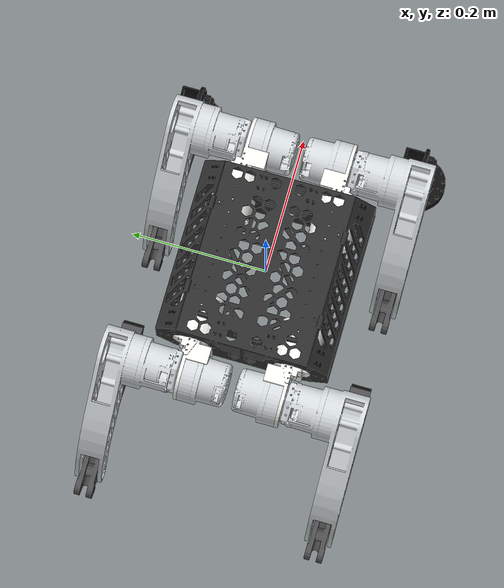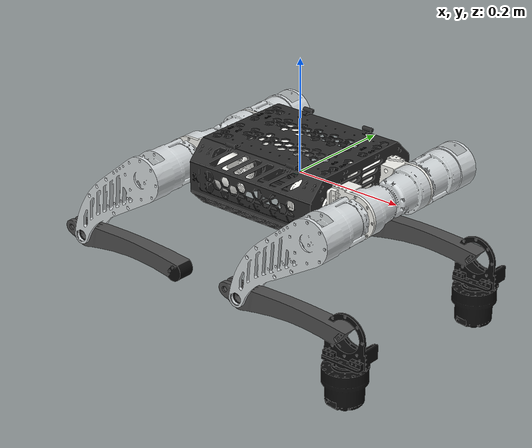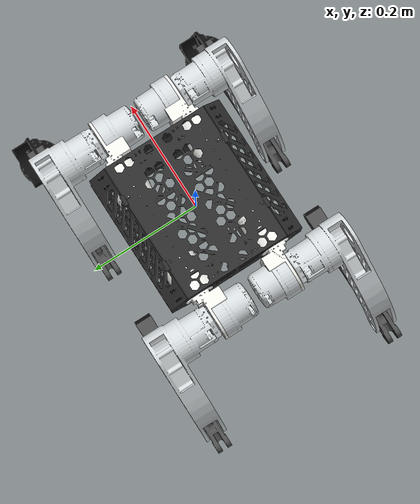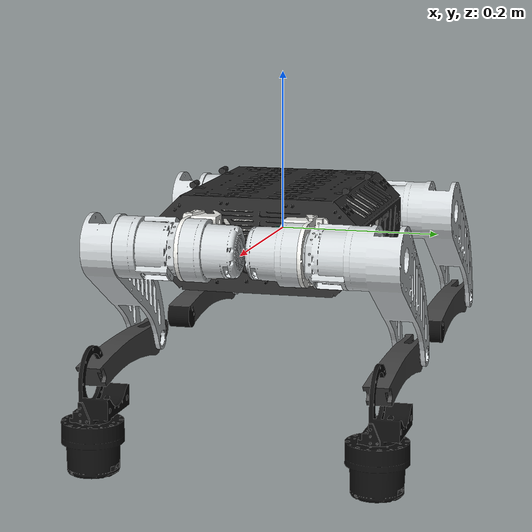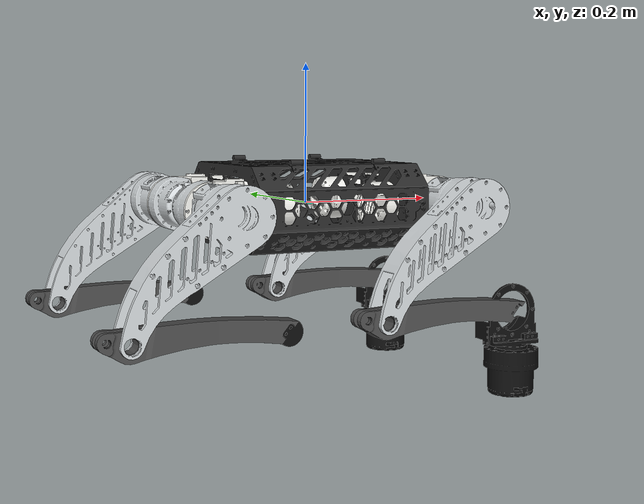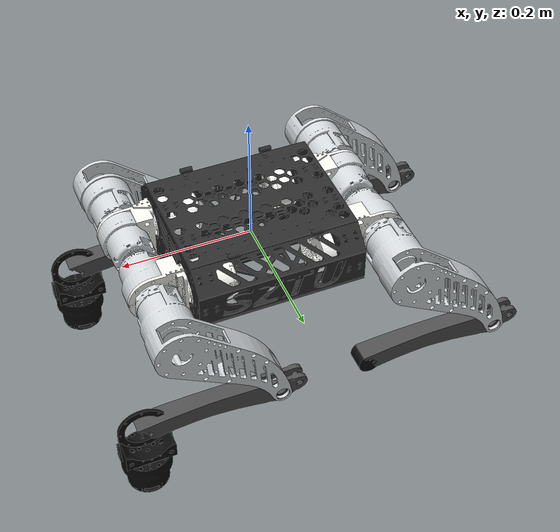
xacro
<?xml version="1.0"?>
<robot xmlns:xacro="http://www.ros.org/wiki/xacro" name="robot">

<!--模型部分-->
    <!--虚拟关节-->
        <link name="dummy_link">
            <!-- 虚拟链接不需要惯性参数 -->
        </link>
        <joint name="dummy_to_base" type="fixed">
            <parent link="dummy_link"/>
            <child link="base_link"/>
            <origin xyz="0 0 0" rpy="0 0 0"/>
        </joint>
    <!--模型-->
        <xacro:include filename="$(find robot_description)/robot/urdf/Combination.xacro"/>
<!--gazebo仿真部分-->
    <xacro:include filename="$(find robot_description)/robot/urdf/sensor_gazebo.xacro"/>
    <!--imu-->
        <xacro:imu_gazebo imu_name="imu_link" connected_to="base_link"/>
    <!--motor-->
        <xacro:motor_gazebo />
    <!--作弊里程计-->
        <gazebo>
            <plugin name="ground_truth_odometry" filename="libgazebo_ros_p3d.so">
                <alwaysOn>true</alwaysOn>
                <updateRate>500.0</updateRate>
                <bodyName>base_link</bodyName>
                <topicName>odom</topicName>
                <gaussianNoise>0.01</gaussianNoise>
                <frameName>world</frameName>
                    <!-- initialize odometry for fake localization-->
                <xyzOffsets>0 0 0</xyzOffsets>
                <rpyOffsets>0 0 0</rpyOffsets>
            </plugin>
        </gazebo>

        <gazebo reference="base_link">
            <mu1>0.2</mu1>
            <mu2>0.2</mu2>
            <kp  value="1000000.0"/>
            <kd  value="1.0"/>
        </gazebo>

        <!--  leg 1-->
        <gazebo reference="leg1_link1">
            <mu1>0.2</mu1>
            <mu2>0.2</mu2>
            <material>Gazebo/DarkGrey</material>
        </gazebo>
        <gazebo reference="leg1_link2">
            <mu1>0.2</mu1>
            <mu2>0.2</mu2>
            <self_collide>1</self_collide>
            <material>Gazebo/DarkGrey</material>
            <kp  value="1000000.0"/>
            <kd  value="1.0"/>
        </gazebo>
        <gazebo reference="leg1_link3">
            <mu1>0.2</mu1>
            <mu2>0.2</mu2>
            <self_collide>1</self_collide>
        </gazebo>
        <gazebo reference="leg1_link4">
            <mu1>0.6</mu1>
            <mu2>0.6</mu2>
            <self_collide>1</self_collide>
            <material>Gazebo/DarkGrey</material>
            <kp  value="1000000.0"/>
            <kd  value="1.0"/>
        </gazebo>

        <!--  leg 2-->
        <gazebo reference="leg2_link1">
            <mu1>0.2</mu1>
            <mu2>0.2</mu2>
            <material>Gazebo/DarkGrey</material>
        </gazebo>
        <gazebo reference="leg2_link2">
            <mu1>0.2</mu1>
            <mu2>0.2</mu2>
            <self_collide>1</self_collide>
            <material>Gazebo/DarkGrey</material>
            <kp  value="1000000.0"/>
            <kd  value="1.0"/>
        </gazebo>
        <gazebo reference="leg2_link3">
            <mu1>0.2</mu1>
            <mu2>0.2</mu2>
            <self_collide>1</self_collide>
        </gazebo>
        <gazebo reference="leg2_link4">
            <mu1>0.6</mu1>
            <mu2>0.6</mu2>
            <self_collide>1</self_collide>
            <material>Gazebo/DarkGrey</material>
            <kp  value="1000000.0"/>
            <kd  value="1.0"/>
        </gazebo>

        <!--  leg 3-->
        <gazebo reference="leg3_link1">
            <mu1>0.2</mu1>
            <mu2>0.2</mu2>
            <material>Gazebo/DarkGrey</material>
        </gazebo>
        <gazebo reference="leg3_link2">
            <mu1>0.2</mu1>
            <mu2>0.2</mu2>
            <self_collide>1</self_collide>
            <material>Gazebo/DarkGrey</material>
            <kp  value="1000000.0"/>
            <kd  value="1.0"/>
        </gazebo>
        <gazebo reference="leg3_link3">
            <mu1>0.2</mu1>
            <mu2>0.2</mu2>
            <self_collide>1</self_collide>
        </gazebo>
        <gazebo reference="leg3_link4">
            <mu1>0.6</mu1>
            <mu2>0.6</mu2>
            <self_collide>1</self_collide>
            <material>Gazebo/DarkGrey</material>
            <kp  value="1000000.0"/>
            <kd  value="1.0"/>
        </gazebo>

        <!--  leg 4-->
        <gazebo reference="leg4_link1">
            <mu1>0.2</mu1>
            <mu2>0.2</mu2>
            <material>Gazebo/DarkGrey</material>
        </gazebo>
        <gazebo reference="leg4_link2">
            <mu1>0.2</mu1>
            <mu2>0.2</mu2>
            <self_collide>1</self_collide>
            <material>Gazebo/DarkGrey</material>
            <kp  value="1000000.0"/>
            <kd  value="1.0"/>
        </gazebo>
        <gazebo reference="leg4_link3">
            <mu1>0.2</mu1>
            <mu2>0.2</mu2>
            <self_collide>1</self_collide>
        </gazebo>
        <gazebo reference="leg4_link4">
            <mu1>0.6</mu1>
            <mu2>0.6</mu2>
            <self_collide>1</self_collide>
            <material>Gazebo/DarkGrey</material>
            <kp  value="1000000.0"/>
            <kd  value="1.0"/>
        </gazebo>

</robot>

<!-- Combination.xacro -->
<robot xmlns:xacro="http://www.ros.org/wiki/xacro" name="robot">
<!--机器人描述-->
    <!--通用描述参数-->
        <xacro:include filename="$(find robot_description)/robot/urdf/robot_param.xacro"/>
    <!-- 定义颜色材料 -->
            <material name="body_material">
                <color rgba="0.17 0.17 0.17 1"/>
            </material>
            <material name="link_1_material">
                <color rgba="0.95 0.95 0.93 1"/>
            </material>
            <material name="link_2_material">
                <color rgba="0.82 0.84 0.85 1"/>
            </material>
            <material name="link_3_material">
                <color rgba="0.3 0.3 0.3 1"/>
            </material>
            <material name="link_4_material">
                <color rgba="0.05 0.05 0.05 1"/>
            </material>
    <!--身体部分body-->
        <link
            name="base_link">
            <!--惯性矩阵-->
            <inertial>
                <origin
                    xyz="${body_com_x} ${body_com_y} ${body_com_z}"
                    rpy="0 0 0" />
                <mass
                    value="${body_mass}" />
                <inertia
                    ixx="${body_ixx}"
                    ixy="${body_ixy}"
                    ixz="${body_ixz}"
                    iyy="${body_iyy}"
                    iyz="${body_iyz}"
                    izz="${body_izz}" />
            </inertial>
            <!--可视化-->
            <visual>
                <origin
                    xyz="0 0 0"
                    rpy="0 0 0" />
                <geometry>
                    <mesh filename="${meshes_dir}/base_link.STL" />
                </geometry>
                <material name="body_material"/>
            </visual>
            <!--碰撞-->
            <collision>
                <origin
                    xyz="0 0 0"
                    rpy="0 0 0" />
                <geometry>
                    <box size="${collision_body_length} ${collision_body_width} ${collision_body_height}"/>
                </geometry>
            </collision>
        </link>
    <!--腿部分leg-->
        <xacro:include filename="$(find robot_description)/robot/urdf/leg.xacro"/>
        <xacro:leg name="leg1" mirror_x="-1" mirror_y="1"/>
        <xacro:leg name="leg2" mirror_x="1" mirror_y="1"/>
        <xacro:leg name="leg3" mirror_x="-1" mirror_y="-1"/>
        <xacro:leg name="leg4" mirror_x="1" mirror_y="-1"/>
    <!--imu-->
        <!-- Imu joint -->
            <joint name="imu_joint" type="fixed">
                <origin xyz="0 0 0" rpy="0 0 0"/>
                <parent link="base_link"/>
                <child link="imu_link"/>
            </joint>
        <!-- Imu link -->
            <link name="imu_link">
                <!-- 材料 -->
                <inertial>
                    <mass value="0.01"/>
                    <origin rpy="0 0 0" xyz="0 0 0"/>
                    <inertia ixx="0.000001" ixy="0" ixz="0" iyy="0.000001" iyz="0" izz="0.000001"/>
                </inertial>
                <!-- 可视化 -->
                <visual>
                    <origin rpy="0 0 0" xyz="0 0 0"/>
                    <geometry>
                        <box size="0.015 0.015 0.004"/>
                    </geometry>
                </visual>
                <!-- 颜色 -->
                <material name="orange">
                    <color rgba="255 108 10 255"/>
                </material>
            </link>
</robot>

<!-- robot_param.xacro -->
<robot xmlns:xacro="http://www.ros.org/wiki/xacro" name="robot_param">
<!-- 描述为 第一个腿部坐标系 向y平移 到第二个腿部坐标系 向z平移到第三个坐标系 向z平移到第四个坐标系-->
    <!--第一个link为根坐标系 其默认坐标系为世界坐标系 相对偏移也是相对于该坐标系-->
<!-- 机体的描述base_link -->
        <xacro:property name="robot_name" value="robot"/>
        <xacro:property name="meshes_dir" value="package://robot_description/robot/meshes"/>
    <!--电机的参数-->
        <!--前两个关节-->
        <xacro:property name="motor1_damping" value="1e-1"/>
        <xacro:property name="motor1_friction" value="1e-2"/>
        <xacro:property name="motor1_torque" value="36.0"/>
        <xacro:property name="motor1_vel" value="17.3"/>
        <!--第三个关节-->
        <xacro:property name="motor2_damping" value="0.01"/>
        <xacro:property name="motor2_friction" value="0.2"/>
        <xacro:property name="motor2_torque" value="36.0"/>
        <xacro:property name="motor2_vel" value="17.3"/>
        <!--关节角度限制 最小 最大-->
        <xacro:property name="joint1_lb" value="-3.14"/>
        <xacro:property name="joint1_ub" value="3.14"/>
        <xacro:property name="joint2_lb" value="-3.14"/>
        <xacro:property name="joint2_ub" value="3.14"/>
        <xacro:property name="joint3_lb" value="-3.14"/>
        <xacro:property name="joint3_ub" value="3.14"/>

    <!--body link-->
        <!--质量-->
        <xacro:property name="body_mass" value="5.0"/>
        <!--重心偏移-->
        <xacro:property name="body_com_x" value="0.00015"/>
        <xacro:property name="body_com_y" value="0.00075"/>
        <xacro:property name="body_com_z" value="-0.00400"/>
        <!--惯性矩阵 负张量计数法-->
        <xacro:property name="body_ixx" value="0.04181"/>
        <xacro:property name="body_ixy" value="-0.00001"/>
        <xacro:property name="body_ixz" value="0.00005"/>
        <xacro:property name="body_iyy" value="0.05580"/>
        <xacro:property name="body_iyz" value="0.00002"/>
        <xacro:property name="body_izz" value="0.07930"/>
<!--描述的是左上角的腿的数据 其他腿的数据根据镜像情况镜像 -->
<!--leg-->
        <!--joint1-->
            <!--关节初始偏移量 gazebo需要 mujoco不需要-->
            <xacro:property name="joint1_offest_init" value="0.0"/>
            <!--关节相对父连杆的位置偏移-->
            <xacro:property name="joint1_offest_x" value="0.177"/>
            <xacro:property name="joint1_offest_y" value="0.0755"/>
            <xacro:property name="joint1_offest_z" value="0.0"/>
        <!--link1-->
            <!--质量-->
            <xacro:property name="link1_mass" value="0.68678"/>
            <!--重心偏移-->
            <xacro:property name="link1_com_x" value="-0.00461"/>
            <xacro:property name="link1_com_y" value="-0.02471"/>
            <xacro:property name="link1_com_z" value="0.00019"/>
            <!--惯性矩阵 负张量计数法-->
            <xacro:property name="link1_ixx" value="0.00051"/>
            <xacro:property name="link1_ixy" value="-0.00005"/>
            <xacro:property name="link1_ixz" value="0.0"/>
            <xacro:property name="link1_iyy" value="0.00050"/>
            <xacro:property name="link1_iyz" value="0.0"/>
            <xacro:property name="link1_izz" value="0.00057"/>

        <!--joint2-->
            <!--关节初始偏移量 gazebo需要 mujoco不需要-->
            <xacro:property name="joint2_offest_init" value="0.785"/>
            <!--关节相对父连杆的位置偏移-->
            <xacro:property name="joint2_offest_x" value="0.0"/>
            <xacro:property name="joint2_offest_y" value="0.0993"/>
            <xacro:property name="joint2_offest_z" value="0.0"/>
        <!--link2-->
            <!--质量-->
            <xacro:property name="link2_mass" value="1.22859"/>
            <!--重心偏移-->
            <xacro:property name="link2_com_x" value="-0.00238"/>
            <xacro:property name="link2_com_y" value="-0.02441"/>
            <xacro:property name="link2_com_z" value="-0.04244"/>
            <!--惯性矩阵 负张量计数法-->
            <xacro:property name="link2_ixx" value="0.00754"/>
            <xacro:property name="link2_ixy" value="-0.00008"/>
            <xacro:property name="link2_ixz" value="0.00033"/>
            <xacro:property name="link2_iyy" value="0.00682"/>
            <xacro:property name="link2_iyz" value="-0.00128"/>
            <xacro:property name="link2_izz" value="0.00167"/>

        <!--joint3-->
            <!--关节初始偏移量 gazebo需要 mujoco不需要-->
            <xacro:property name="joint3_offest_init" value="-2.355"/>
            <!--关节相对父连杆的位置偏移-->
            <xacro:property name="joint3_offest_x" value="0.0"/>
            <xacro:property name="joint3_offest_y" value="0.0"/>
            <xacro:property name="joint3_offest_z" value="-0.21"/>
        <!--link3-->
            <!--质量-->
            <xacro:property name="link3_mass" value="0.20045"/>
            <!--重心偏移-->
            <xacro:property name="link3_com_x" value="0.00418"/>
            <xacro:property name="link3_com_y" value="0.000"/>
            <xacro:property name="link3_com_z" value="-0.09392"/>
            <!--惯性矩阵 负张量计数法-->
            <xacro:property name="link3_ixx" value="0.00094"/>
            <xacro:property name="link3_ixy" value="0.0"/>
            <xacro:property name="link3_ixz" value="-0.00003"/>
            <xacro:property name="link3_iyy" value="0.00094"/>
            <xacro:property name="link3_iyz" value="0.0"/>
            <xacro:property name="link3_izz" value="0.00003"/>

        <!--joint4-->
            <!--关节相对父连杆的位置偏移-->
            <xacro:property name="joint4_offest_x" value="0.0"/>
            <xacro:property name="joint4_offest_y" value="0.0"/>
            <xacro:property name="joint4_offest_z" value="-0.21"/>
        <!--link4-->
            <!--质量-->
            <xacro:property name="link4_mass" value="0.01658"/>
            <!--重心偏移-->
            <xacro:property name="link4_com_x" value="-0.00432"/>
            <xacro:property name="link4_com_y" value="0.0"/>
            <xacro:property name="link4_com_z" value="-0.00515"/>
            <!--惯性矩阵 负张量计数法-->
            <xacro:property name="link4_ixx" value="0.00001"/>
            <xacro:property name="link4_ixy" value="0.0"/>
            <xacro:property name="link4_ixz" value="0.0"/>
            <xacro:property name="link4_iyy" value="0.00001"/>
            <xacro:property name="link4_iyz" value="0.0"/>
            <xacro:property name="link4_izz" value="0.00001"/>
<!--碰撞属性 偏移是按照左上腿做的-->
    <!--机体 默认盒子 长宽高-->
        <xacro:property name="collision_body_length" value="0.256"/>
        <xacro:property name="collision_body_width" value="0.256"/>
        <xacro:property name="collision_body_height" value="0.118"/>
    <!--link1 默认一个圆柱 长度 半径-->
        <xacro:property name="collision_link1_length" value="0.06"/>
        <xacro:property name="collision_link1_radius" value="0.038"/>
        <xacro:property name="collision_link1_offest_y" value="-0.033"/>
    <!--link2 默认一个圆柱(长度 半径) 一个box（长宽高）-->
        <xacro:property name="collision_link2_length1" value="0.117"/>
        <xacro:property name="collision_link2_radius" value="0.038"/>
        <xacro:property name="collision_link2_offest_y" value="-0.036"/>

        <xacro:property name="collision_link2_length2" value="0.165"/>
        <xacro:property name="collision_link2_width" value="0.04"/>
        <xacro:property name="collision_link2_height" value="0.06"/>
        <xacro:property name="collision_link2_offest_z" value="-0.125"/>
    <!--link3 默认一个圆柱 长度 半径-->
        <xacro:property name="collision_link3_length" value="0.21"/>
        <xacro:property name="collision_link3_radius" value="0.019"/>
        <xacro:property name="collision_link3_offest_z" value="-0.105"/>
    <!--link4 默认一个球 半径-->
        <xacro:property name="collision_link4_radius" value="0.018"/>

</robot>

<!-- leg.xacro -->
<robot xmlns:xacro="http://www.ros.org/wiki/xacro">
<xacro:macro name="leg" params="name mirror_x mirror_y">
    <!--joint1-->
    <joint
        name="${name}_joint1"
        type="revolute">
        <!--两个坐标系（link）的相对偏移-->
        <origin
            xyz="${joint1_offest_x*mirror_y} ${joint1_offest_y*mirror_x} ${joint1_offest_z}"
            rpy="${joint1_offest_init*mirror_x} 0 0" />
        <parent link="base_link" />
        <child link="${name}_link1" />
        <axis xyz="1 0 0" />
        <dynamics damping="${motor1_damping}" friction="${motor1_friction}"/>
        <limit effort="${motor1_torque}" velocity="${motor1_vel}" lower="${joint1_lb}" upper="${joint1_ub}" />
    </joint>
    <!--link1-->
    <link
        name="${name}_link1">
        <!--质心偏移-->
        <inertial>
            <origin
                xyz="${link1_com_x*mirror_y} ${link1_com_y*mirror_x} ${link1_com_z}"
                rpy="0 0 0" />
            <mass
                value="${link1_mass}" />
            <inertia
                ixx="${link1_ixx}"
                ixy="${link1_ixy*mirror_y*mirror_x}"
                ixz="${link1_ixz*mirror_y}"
                iyy="${link1_iyy}"
                iyz="${link1_iyz*mirror_x}"
                izz="${link1_izz}" />
        </inertial>
        <visual>
            <origin
                xyz="0 0 0"
                rpy="0 0 0" />
            <geometry>
                <mesh
                filename="${meshes_dir}/${name}_link1.STL" />
            </geometry>
            <material name="link_1_material"/>
        </visual>
        <collision>
            <origin
                xyz="0 ${collision_link1_offest_y*mirror_x} 0"
                rpy="1.57 0 0" />
            <geometry>
                <cylinder length="${collision_link1_length}" radius="${collision_link1_radius}"/>
            </geometry>
        </collision>
    </link>

    <!--joint2-->
    <joint
        name="${name}_joint2"
        type="revolute">
        <!--两个坐标系（link）的相对偏移-->
        <origin
            xyz="${joint2_offest_x*mirror_y} ${joint2_offest_y*mirror_x} ${joint2_offest_z}"
            rpy="0 ${joint2_offest_init} 0" />
        <parent link="${name}_link1" />
        <child link="${name}_link2" />
        <axis xyz="0 1 0" />
        <dynamics damping="${motor1_damping}" friction="${motor1_friction}"/>
        <limit effort="${motor1_torque}" velocity="${motor1_vel}" lower="${joint2_lb}" upper="${joint2_ub}" />
    </joint>
    <!--link2-->
    <link
        name="${name}_link2">
        <!--质心偏移-->
        <inertial>
            <origin
                xyz="${link2_com_x*mirror_y} ${link2_com_y*mirror_x} ${link2_com_z}"
                rpy="0 0 0" />
            <mass
                value="${link2_mass}" />
            <inertia
                ixx="${link2_ixx}"
                ixy="${link2_ixy*mirror_y*mirror_x}"
                ixz="${link2_ixz*mirror_y}"
                iyy="${link2_iyy}"
                iyz="${link2_iyz*mirror_x}"
                izz="${link2_izz}" />
        </inertial>
        <visual>
            <origin
                xyz="0 0 0"
                rpy="0 0 0" />
            <geometry>
                <mesh
                filename="${meshes_dir}/${name}_link2.STL" />
            </geometry>
            <material name="link_2_material"/>
        </visual>
        <!--圆柱和盒子组合-->
        <collision>
            <origin
                xyz="0 ${collision_link2_offest_y*mirror_x} 0" rpy="1.57 0 0" />
            <geometry>
                <cylinder length="${collision_link2_length1}" radius="${collision_link2_radius}"/>
            </geometry>
        </collision>
        <collision>
            <origin
                xyz="0 0 ${collision_link2_offest_z}" rpy="0 1.57 0" />
            <geometry>
                <box size="${collision_link2_length2} ${collision_link2_width} ${collision_link2_height}"/>
            </geometry>
        </collision>
    </link>

    <!--joint3-->
    <joint
        name="${name}_joint3"
        type="revolute">
        <!--两个坐标系（link）的相对偏移-->
        <origin
            xyz="${joint3_offest_x*mirror_y} ${joint3_offest_y*mirror_x} ${joint3_offest_z}"
            rpy="0 ${joint3_offest_init} 0" />
        <parent link="${name}_link2" />
        <child link="${name}_link3" />
        <axis xyz="0 1 0" />
        <dynamics damping="${motor2_damping}" friction="${motor2_friction}"/>
        <limit effort="${motor2_torque}" velocity="${motor2_vel}" lower="${joint3_lb}" upper="${joint3_ub}" />
    </joint>
    <!--link3-->
    <link
        name="${name}_link3">
        <!--质心偏移-->
        <inertial>
            <origin
                xyz="${link3_com_x*mirror_y} ${link3_com_y*mirror_x} ${link3_com_z}"
                rpy="0 0 0" />
            <mass
                value="${link3_mass}" />
            <inertia
                ixx="${link3_ixx}"
                ixy="${link3_ixy*mirror_y*mirror_x}"
                ixz="${link3_ixz*mirror_y}"
                iyy="${link3_iyy}"
                iyz="${link3_iyz*mirror_x}"
                izz="${link3_izz}" />
        </inertial>
        <visual>
            <origin
                xyz="0 0 0"
                rpy="0 0 0" />
            <geometry>
                <mesh
                filename="${meshes_dir}/${name}_link3.STL" />
            </geometry>
            <material name="link_3_material"/>
        </visual>
        <collision>
            <origin
                xyz="0 0 ${collision_link3_offest_z}"
                rpy="0 0 0" />
            <geometry>
                <cylinder length="${collision_link3_length}" radius="${collision_link3_radius}"/>
            </geometry>
        </collision>
    </link>

    <!--joint4-->
    <joint
        name="${name}_joint4"
        type="fixed">
        <!--两个坐标系（link）的相对偏移-->
        <origin
            xyz="${joint4_offest_x*mirror_y} ${joint4_offest_y*mirror_x} ${joint4_offest_z}"
            rpy="0 0 0" />
        <parent link="${name}_link3" />
        <child link="${name}_link4" />
    </joint>
    <!--link4-->
    <link
        name="${name}_link4">
        <!--质心偏移-->
        <inertial>
            <origin
                xyz="${link4_com_x*mirror_y} ${link4_com_y*mirror_x} ${link4_com_z}"
                rpy="0 0 0" />
            <mass
                value="${link4_mass}" />
            <inertia
                ixx="${link4_ixx}"
                ixy="${link4_ixy*mirror_y*mirror_x}"
                ixz="${link4_ixz*mirror_y}"
                iyy="${link4_iyy}"
                iyz="${link4_iyz*mirror_x}"
                izz="${link4_izz}" />
        </inertial>
        <visual>
            <origin
                xyz="0 0 0"
                rpy="0 0 0" />
            <geometry>
                <mesh
                filename="${meshes_dir}/${name}_link4.STL" />
            </geometry>
            <material name="link_4_material"/>
        </visual>
        <collision>
            <origin
                xyz="0 0 0"
                rpy="0 0 0" />
            <geometry>
                <sphere radius="${collision_link4_radius}"/>
            </geometry>
            <surface>
                 <friction>
                  <ode>
                        <mu>1.0</mu>
                        <mu2>1.0</mu2>
                  </ode>
                 </friction>
            </surface>
        </collision>
    </link>

    <!-- 指定执行机构 -->
    <!--motor1-->
    <transmission name="${name}_joint1_tran">
        <!--指定传动类型-->
        <type>transmission_interface/SimpleTransmission</type>
        <!--传动系统所连接的关节-->
        <joint name="${name}_joint1">
            <!--硬件接口-->
            <hardwareInterface>hardware_interface/EffortJointInterface</hardwareInterface>
        </joint>
        <!--执行器名称-->
        <actuator name="${name}_joint1_motor">
            <hardwareInterface>hardware_interface/EffortJointInterface</hardwareInterface>
            <!--减速比-->
            <mechanicalReduction>1</mechanicalReduction>
        </actuator>
    </transmission>
    <!--motor2-->
    <transmission name="${name}_joint2_tran">
        <type>transmission_interface/SimpleTransmission</type>
        <joint name="${name}_joint2">
            <hardwareInterface>hardware_interface/EffortJointInterface</hardwareInterface>
        </joint>
        <actuator name="${name}_joint2_motor">
            <hardwareInterface>hardware_interface/EffortJointInterface</hardwareInterface>
            <mechanicalReduction>1</mechanicalReduction>
        </actuator>
    </transmission>
    <!--motor3-->
    <transmission name="${name}_joint3_tran">
        <type>transmission_interface/SimpleTransmission</type>
        <joint name="${name}_joint3">
            <hardwareInterface>hardware_interface/EffortJointInterface</hardwareInterface>
        </joint>
        <actuator name="${name}_joint3_motor">
            <hardwareInterface>hardware_interface/EffortJointInterface</hardwareInterface>
            <mechanicalReduction>1</mechanicalReduction>
        </actuator>
    </transmission>

</xacro:macro>
</robot>
